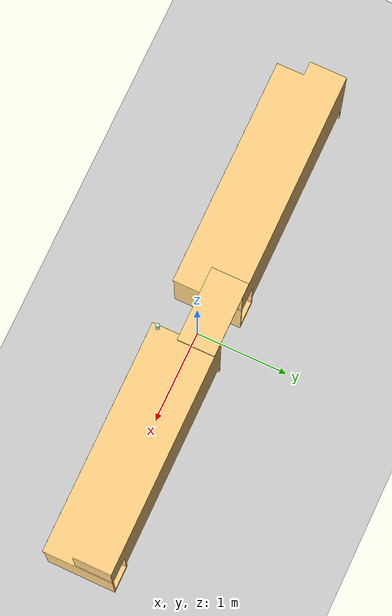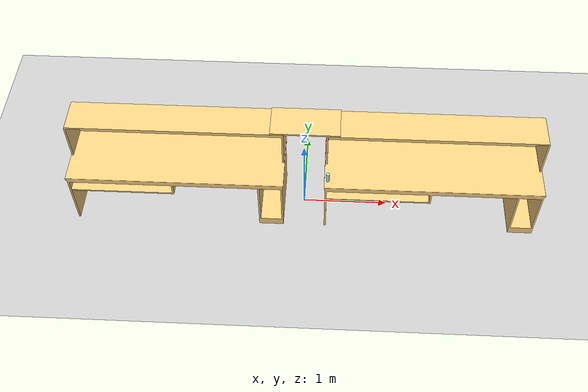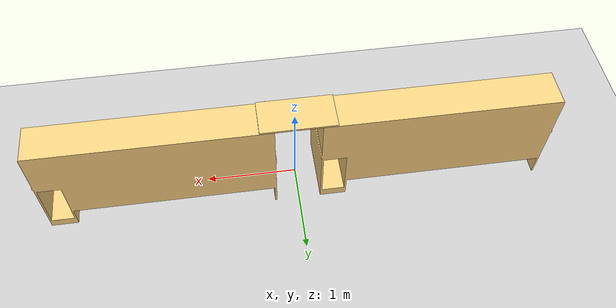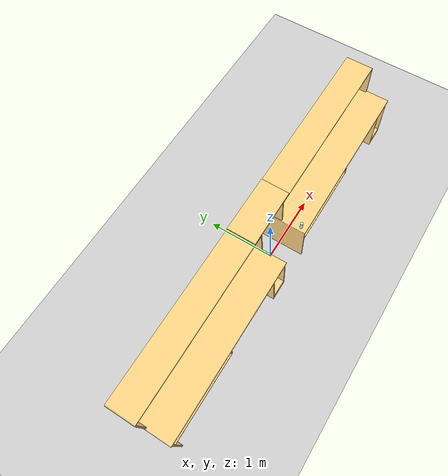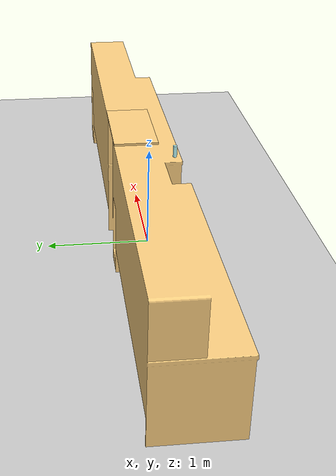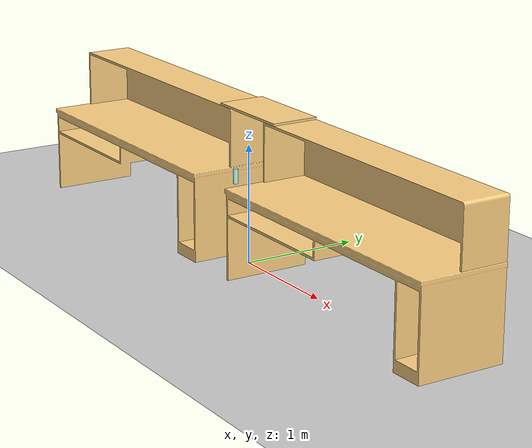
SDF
<sdf version="1.6">
  <world name="empty">

    <!-- physics and plugins -->
    <physics name="my_physics" type="gz-physics-bullet-featherstone-plugin">
      <max_step_size>0.002</max_step_size>    <!-- 0.002 = 500 Hz -->
    <real_time_update_rate>200</real_time_update_rate> <!-- or 200 -->
    </physics>
    <plugin filename="gz-sim-physics-system" name="gz::sim::systems::Physics"/>
    <plugin filename="gz-sim-user-commands-system" name="gz::sim::systems::UserCommands"/>
    <plugin filename="gz-sim-scene-broadcaster-system" name="gz::sim::systems::SceneBroadcaster"/>
    <plugin filename="gz-sim-contact-system" name="gz::sim::systems::Contact"/>

    <!-- Sun -->
    <light type="directional" name="sun">
      <pose>0 0 10 0 0 0</pose>
      <diffuse>0.8 0.8 0.8 1</diffuse>
      <specular>0.2 0.2 0.2 1</specular>
      <direction>-0.5 0.1 -0.9</direction>
    </light>

    <!-- Ground -->
    <model name="ground_plane">
      <static>true</static>
      <link name="link">
        <collision name="collision">
          <geometry>
            <plane>
              <normal>0 0 1</normal>
              <size>100 100</size>
            </plane>
          </geometry>
        </collision>
        <visual name="visual">
          <geometry>
            <plane>
              <normal>0 0 1</normal>
              <size>100 100</size>
            </plane>
          </geometry>
        </visual>
      </link>
    </model>

    <!-- Table -->
    <include>
        <uri>file:///home/maryam-mahmood/udaadbot_ws/src/daadbot_desc/worlds/table.sdf</uri>
        <name>table</name>
        <pose>0 0 0 0 0 0</pose>
    </include>

    <!-- Bottle -->
    <include>
        <uri>file:///home/maryam-mahmood/udaadbot_ws/src/daadbot_desc/worlds/bottle.sdf</uri>
        <name>bottle</name>
        <pose>0.28 -0.30 0.86 0 0 0</pose> <!-- place on top of table -->
    </include>

  </world>
</sdf>

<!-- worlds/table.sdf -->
<sdf version="1.11">
  <model name="table">
    <static>true</static>
    <link name="table_top">
      <collision name="table_top_collision">
        <geometry>
          <mesh>
            <scale>1 1 1</scale>
            <uri>file:///home/maryam-mahmood/udaadbot_ws/src/daadbot_desc/meshes_lab_table/base_link.STL</uri>
          </mesh>
        </geometry>
      </collision>
      <collision name="table_link1_collision">
        <pose>0.005 0.1725 1.27 -1.5708 0 -3.1416</pose>
        <geometry>
          <mesh>
            <scale>1 1 1</scale>
            <uri>file:///home/maryam-mahmood/udaadbot_ws/src/daadbot_desc/meshes_lab_table/link1.STL</uri>
          </mesh>
        </geometry>
      </collision>
      <visual name="table_top_visual">
        <geometry>
          <mesh>
            <scale>1 1 1</scale>
            <uri>file:///home/maryam-mahmood/udaadbot_ws/src/daadbot_desc/meshes_lab_table/base_link.STL</uri>
          </mesh>
        </geometry>
        <material>
          <diffuse>1 0.825 0.5125 1</diffuse>
          <ambient>1 0.825 0.5125 1</ambient>
        </material>
      </visual>
      <visual name="table_link1_visual">
        <pose>0.005 0.1725 1.27 -1.5708 0 -3.1416</pose>
        <geometry>
          <mesh>
            <scale>1 1 1</scale>
            <uri>file:///home/maryam-mahmood/udaadbot_ws/src/daadbot_desc/meshes_lab_table/link1.STL</uri>
          </mesh>
        </geometry>
        <material>
          <diffuse>1 0.825 0.5125 1</diffuse>
          <ambient>1 0.825 0.5125 1</ambient>
        </material>
      </visual>
    </link>
  </model>
</sdf>

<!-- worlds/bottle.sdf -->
<sdf version="1.11">
  <model name="bottle">
    <static>false</static>
    <link name="bottle_link">
      <pose>0 0 0 0 0 0</pose>

      <collision name="bottle_collision">
        <geometry>
          <cylinder>
            <length>0.16</length>
            <radius>0.035</radius>
          </cylinder>
        </geometry>
        <surface>
          <contact>
            <ode>
              <kp>10</kp>          <!-- contact stiffness -->
              <kd>2</kd>            <!-- damping -->
              <min_depth>0.001</min_depth>
            </ode>
            <max_contacts>3</max_contacts> <!-- limit contact points -->
          </contact>
          <friction>
            <ode>
              <mu>0.8</mu>          <!-- friction coefficient -->
              <mu2>0.8</mu2>
            </ode>
          </friction>
        </surface>
      </collision>

      <visual name="bottle_visual">
        <geometry>
          <cylinder>
            <length>0.12</length>
            <radius>0.02</radius>
          </cylinder>
        </geometry>
        <material>
          <diffuse>0.75 1 1 1</diffuse>
          <ambient>0.75 1 1 1</ambient>
        </material>
      </visual>

    </link>
  </model>
</sdf>
